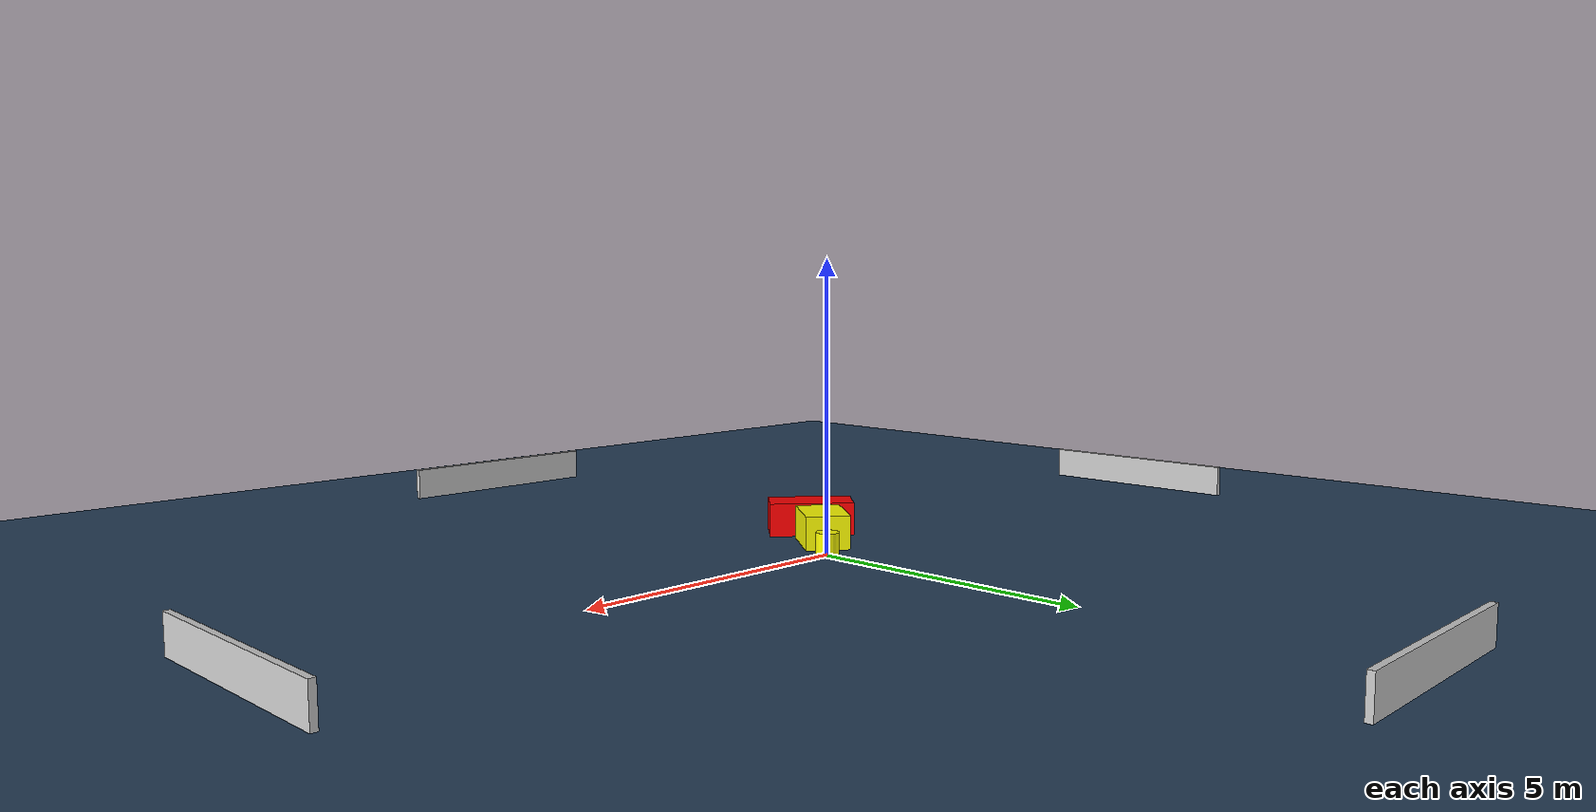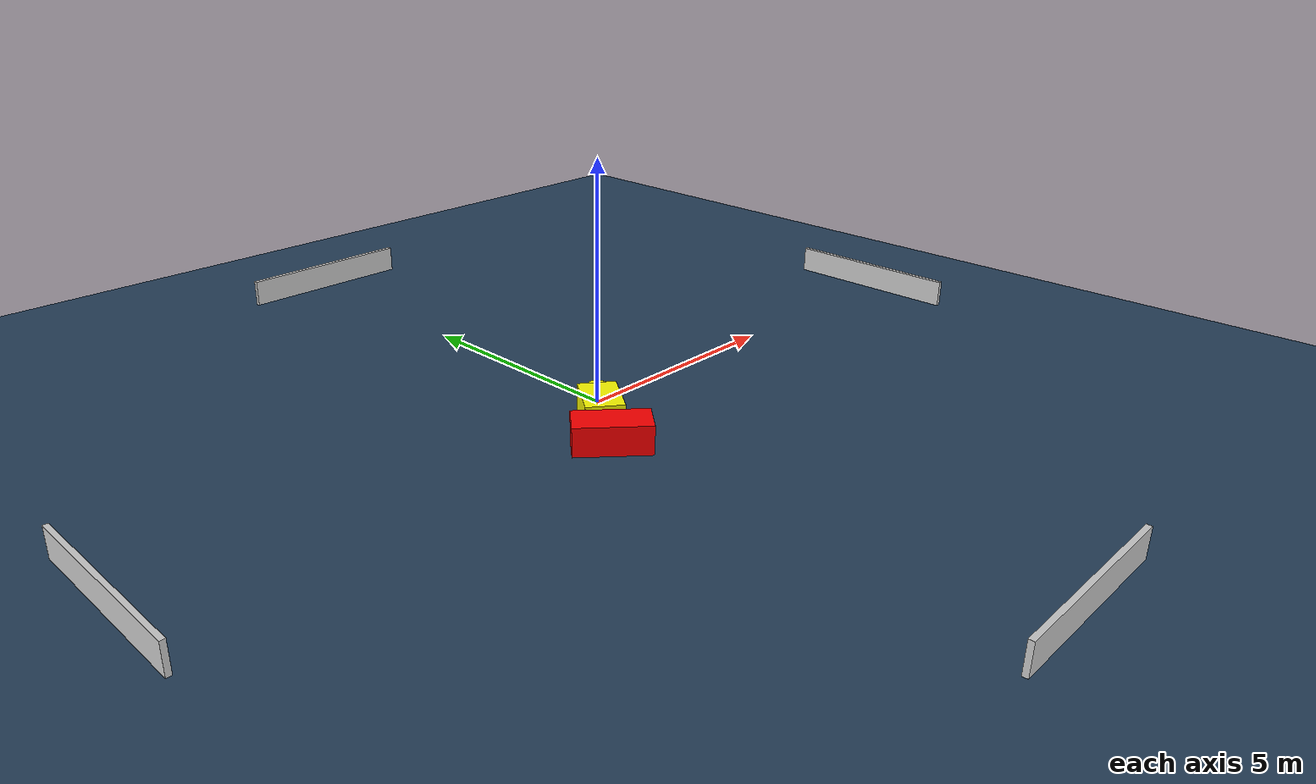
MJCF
<?xml version="1.0" ?>
<mujoco model="generated_environment">
  <option timestep="0.01" integrator="RK4" cone="elliptic"/>
  <default>
    <geom density="1"/>
  </default>
  <asset>
    <texture builtin="gradient" height="3072" name="skybox" rgb1="0.3 0.5 0.7" rgb2="0 0 0" type="skybox" width="512"/>
    <texture builtin="checker" height="300" name="groundplane" rgb1="0.2 0.3 0.4" rgb2="0.1 0.2 0.3" type="2d" width="300"/>
    <material name="groundplane" reflectance="0.2" texrepeat="5 5" texture="groundplane"/>
  </asset>
  <worldbody>
    <light dir="0 0 -1" directional="true" pos="0 0 1.5"/>
    <geom condim="3" friction="0.5 0.005 0.001" material="groundplane" name="floor" pos="0 0 0" size="0 0 0.05" type="plane"/>
    <body name="walls">
      <geom name="wall_1" condim="4" pos="-10.0 0.0 0.3" rgba="0.800000011920929 0.800000011920929 0.800000011920929 1.0" size="0.05 2.0 0.3" type="box"/>
      <geom name="wall_2" condim="4" pos="10.0 0.0 0.3" rgba="0.800000011920929 0.800000011920929 0.800000011920929 1.0" size="0.05 2.0 0.3" type="box"/>
      <geom name="wall_3" condim="4" pos="0.0 -10.0 0.3" rgba="0.800000011920929 0.800000011920929 0.800000011920929 1.0" size="2.0 0.05 0.3" type="box"/>
      <geom name="wall_4" condim="4" pos="0.0 10.0 0.3" rgba="0.800000011920929 0.800000011920929 0.800000011920929 1.0" size="2.0 0.05 0.3" type="box"/>
    </body>
    <body name="robot">
      <joint name="joint_x" type="slide" pos="0 0 0" axis="1 0 0"/>
      <joint name="joint_y" type="slide" pos="0 0 0" axis="0 1 0"/>
      <geom name="robot" type="cylinder" pos="0.0 0.0 0.2" size="0.2 0.2 0.0" mass="5.0" friction="1.0 0.005 0.0001" condim="4" rgba="1.0 1.0 0.0 1.0"/>
    </body>
    <body name="obstacle_1_movable">
      <geom name="obstacle_1_movable" condim="4" pos="-0.5919402611510081 -0.6841470427081977 0.3" euler="0 0 324.06816420482033" friction="0.0 0.005 0.001" rgba="1.0 1.0 0.0 1.0" size="0.3913728785840904 0.5514834138218216 0.3" type="box" mass="0.1"/>
      <joint type="free"/>
    </body>
    <body name="obstacle_2_static">
      <geom name="obstacle_2_static" condim="4" pos="-1.1957387733623166 -1.5747993058360954 0.3" euler="0 0 228.86118755336017" friction="0.0 0.005 0.001" rgba="1.0 0.0 0.0 1.0" size="0.37381674613385674 0.7647515226702841 0.3" type="box"/>
    </body>
  </worldbody>
  <actuator>
    <motor name="actuator_x" joint="joint_x" gear="1" ctrlrange="-1 1"/>
    <motor name="actuator_y" joint="joint_y" gear="1" ctrlrange="-1 1"/>
  </actuator>
</mujoco>
